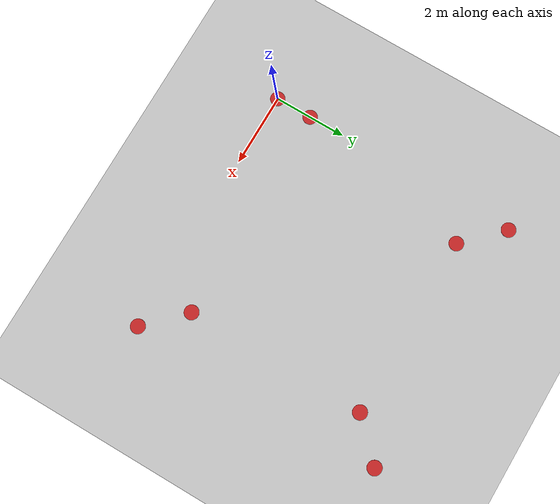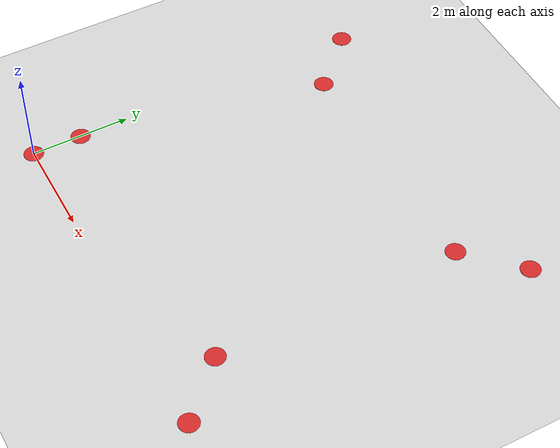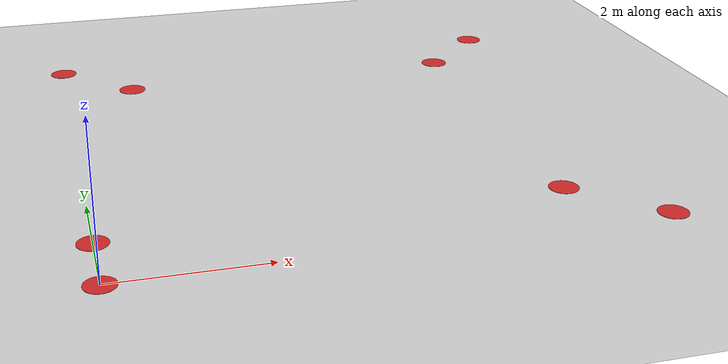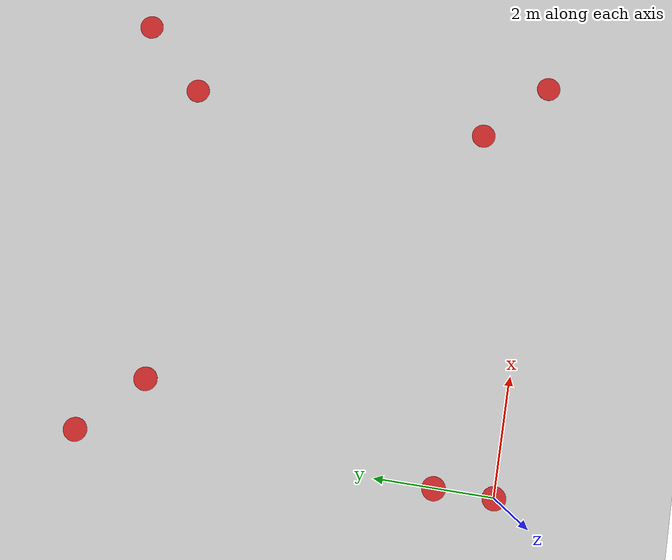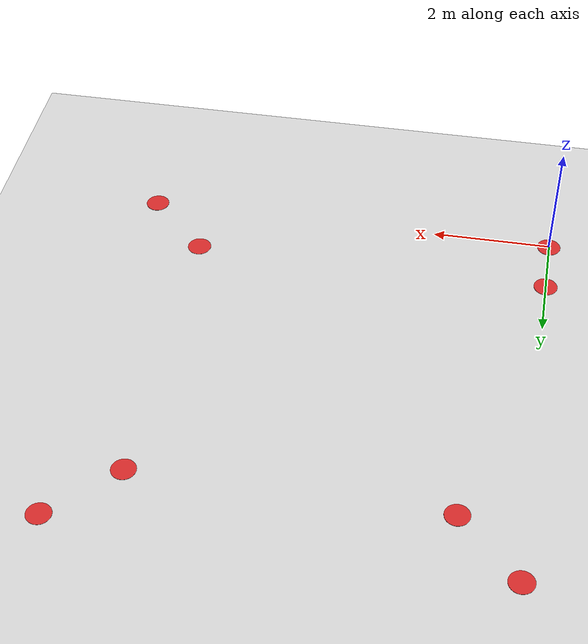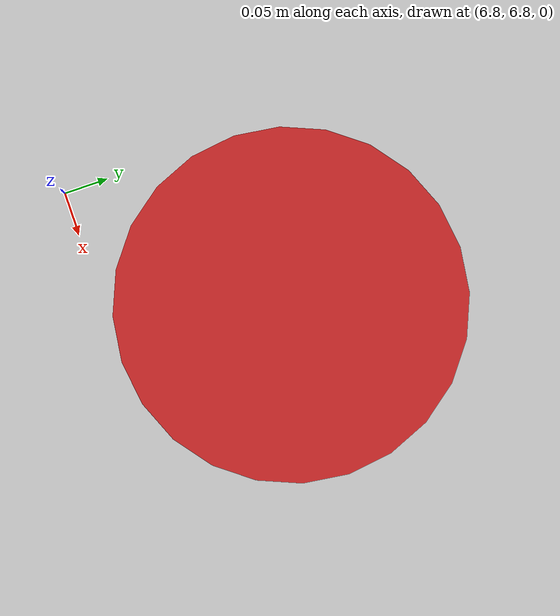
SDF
<sdf version="1.4">
 <world name="default">
  <include><uri>model://ground_plane</uri></include>
  <model name="point">
   <pose>1.0 6.0 0 0 0 0</pose>
   <static>true</static>
   <link name="link">
    <collision name="collision">
     <geometry><cylinder><radius>.2</radius><length>.005</length></cylinder></geometry>
    </collision>
    <visual name="visual">
     <geometry><cylinder><radius>.2</radius><length>.005</length></cylinder></geometry>
     <material>
      <script><uri>file://media/materials/scripts/gazebo.material</uri><name>Gazebo/Red</name></script>
     </material>
    </visual>
   </link>
  </model>
  <model name="point">
   <pose>6.0 6.0 0 0 0 0</pose>
   <static>true</static>
   <link name="link">
    <collision name="collision">
     <geometry><cylinder><radius>.2</radius><length>.005</length></cylinder></geometry>
    </collision>
    <visual name="visual">
     <geometry><cylinder><radius>.2</radius><length>.005</length></cylinder></geometry>
     <material>
      <script><uri>file://media/materials/scripts/gazebo.material</uri><name>Gazebo/Red</name></script>
     </material>
    </visual>
   </link>
  </model>
  <model name="point">
   <pose>6.0 1.0 0 0 0 0</pose>
   <static>true</static>
   <link name="link">
    <collision name="collision">
     <geometry><cylinder><radius>.2</radius><length>.005</length></cylinder></geometry>
    </collision>
    <visual name="visual">
     <geometry><cylinder><radius>.2</radius><length>.005</length></cylinder></geometry>
     <material>
      <script><uri>file://media/materials/scripts/gazebo.material</uri><name>Gazebo/Red</name></script>
     </material>
    </visual>
   </link>
  </model>
  <model name="point">
   <pose>0.0 1.0 0 0 0 0</pose>
   <static>true</static>
   <link name="link">
    <collision name="collision">
     <geometry><cylinder><radius>.2</radius><length>.005</length></cylinder></geometry>
    </collision>
    <visual name="visual">
     <geometry><cylinder><radius>.2</radius><length>.005</length></cylinder></geometry>
     <material>
      <script><uri>file://media/materials/scripts/gazebo.material</uri><name>Gazebo/Red</name></script>
     </material>
    </visual>
   </link>
  </model>
  <model name="point">
   <pose>0.0 7.0 0 0 0 0</pose>
   <static>true</static>
   <link name="link">
    <collision name="collision">
     <geometry><cylinder><radius>.2</radius><length>.005</length></cylinder></geometry>
    </collision>
    <visual name="visual">
     <geometry><cylinder><radius>.2</radius><length>.005</length></cylinder></geometry>
     <material>
      <script><uri>file://media/materials/scripts/gazebo.material</uri><name>Gazebo/Red</name></script>
     </material>
    </visual>
   </link>
  </model>
  <model name="point">
   <pose>7.0 7.0 0 0 0 0</pose>
   <static>true</static>
   <link name="link">
    <collision name="collision">
     <geometry><cylinder><radius>.2</radius><length>.005</length></cylinder></geometry>
    </collision>
    <visual name="visual">
     <geometry><cylinder><radius>.2</radius><length>.005</length></cylinder></geometry>
     <material>
      <script><uri>file://media/materials/scripts/gazebo.material</uri><name>Gazebo/Red</name></script>
     </material>
    </visual>
   </link>
  </model>
  <model name="point">
   <pose>7.0 0.0 0 0 0 0</pose>
   <static>true</static>
   <link name="link">
    <collision name="collision">
     <geometry><cylinder><radius>.2</radius><length>.005</length></cylinder></geometry>
    </collision>
    <visual name="visual">
     <geometry><cylinder><radius>.2</radius><length>.005</length></cylinder></geometry>
     <material>
      <script><uri>file://media/materials/scripts/gazebo.material</uri><name>Gazebo/Red</name></script>
     </material>
    </visual>
   </link>
  </model>
  <model name="point">
   <static>true</static>
   <link name="link">
    <collision name="collision">
     <geometry><cylinder><radius>.2</radius><length>.005</length></cylinder></geometry>
    </collision>
    <visual name="visual">
     <geometry><cylinder><radius>.2</radius><length>.005</length></cylinder></geometry>
     <material>
      <script><uri>file://media/materials/scripts/gazebo.material</uri><name>Gazebo/Red</name></script>
     </material>
    </visual>
   </link>
  </model>
  <include><uri>model://sun</uri></include>
 </world>
</sdf>
